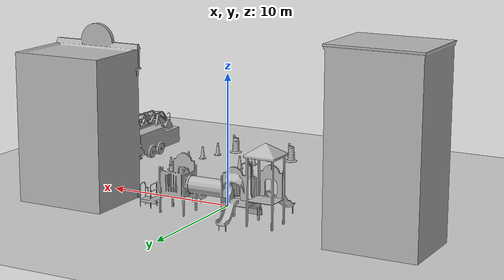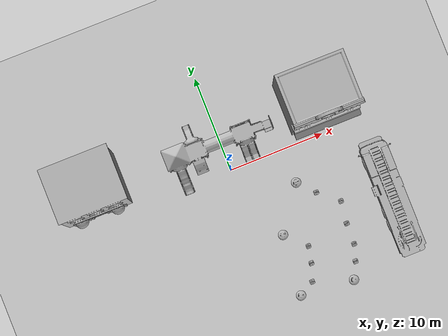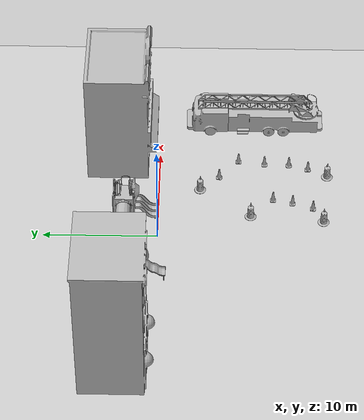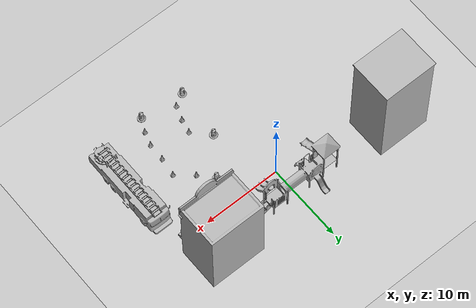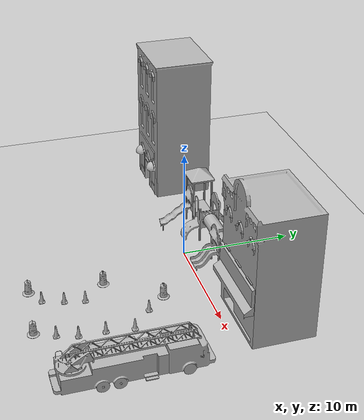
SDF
<sdf version="1.7">
 <world name="default">
  <light name="sun" type="directional">
   <pose>0 0 10 0 -0 0</pose>
   <diffuse>0.8 0.8 0.8 1</diffuse>
   <specular>0.2 0.2 0.2 1</specular>
   <attenuation>
    <range>1000</range>
    <constant>0.9</constant>
    <linear>0.01</linear>
    <quadratic>0.001</quadratic>
   </attenuation>
   <direction>-0.5 0.1 -0.9</direction>
   <spot><inner_angle>0</inner_angle><outer_angle>0</outer_angle><falloff>0</falloff></spot>
  </light>
  <model name="ground_plane">
   <static>1</static>
   <link name="link">
    <collision name="collision">
     <geometry><plane><normal>0 0 1</normal><size>100 100</size></plane></geometry>
     <surface>
      <contact><collide_bitmask>65535</collide_bitmask></contact>
      <friction><ode><mu>100</mu><mu2>50</mu2></ode></friction>
     </surface>
    </collision>
    <visual name="visual">
     <cast_shadows>0</cast_shadows>
     <geometry><plane><normal>0 0 1</normal><size>100 100</size></plane></geometry>
     <material>
      <script><uri>file://media/materials/scripts/gazebo.material</uri><name>Gazebo/Grey</name></script>
     </material>
    </visual>
   </link>
  </model>
  <gravity>0 0 -9.8</gravity>
  <magnetic_field>6e-06 2.3e-05 -4.2e-05</magnetic_field>
  <atmosphere type="adiabatic"/>
  <physics type="ode">
   <max_step_size>0.001</max_step_size>
   <real_time_factor>1</real_time_factor>
   <real_time_update_rate>1000</real_time_update_rate>
  </physics>
  <scene><ambient>0.4 0.4 0.4 1</ambient><background>0.7 0.7 0.7 1</background><shadows>1</shadows></scene>
  <audio><device>default</device></audio>
  <spherical_coordinates>
   <surface_model>EARTH_WGS84</surface_model>
   <latitude_deg>0</latitude_deg>
   <longitude_deg>0</longitude_deg>
   <elevation>0</elevation>
   <heading_deg>0</heading_deg>
  </spherical_coordinates>
  <model name="playground">
   <static>1</static>
   <link name="link">
    <collision name="collision">
     <geometry><mesh><uri>model://playground/meshes/playground.dae</uri></mesh></geometry>
    </collision>
    <visual name="visual">
     <geometry><mesh><uri>model://playground/meshes/playground.dae</uri></mesh></geometry>
    </visual>
   </link>
   <pose>-0.148504 2.5526 0 0 -0 0</pose>
  </model>
  <model name="thrift_shop">
   <static>1</static>
   <link name="link">
    <collision name="collision">
     <pose>0 0 5.69469 0 -0 0</pose>
     <geometry><box><size>7.21297 5.43165 11.3894</size></box></geometry>
    </collision>
    <visual name="visual">
     <pose>0 -0.912491 0 0 -0 0</pose>
     <geometry><mesh><uri>model://thrift_shop/meshes/thrift_shop.dae</uri></mesh></geometry>
    </visual>
   </link>
   <pose>10.7255 3.74569 0 0 -0 0</pose>
  </model>
  <model name="law_office">
   <static>1</static>
   <link name="link">
    <collision name="collision">
     <pose>0 0 6.96244 0 -0 0</pose>
     <geometry><box><size>6.84401 5.43165 13.9249</size></box></geometry>
    </collision>
    <visual name="visual">
     <geometry><mesh><uri>model://law_office/meshes/law_office.dae</uri></mesh></geometry>
    </visual>
   </link>
   <pose>-13.9252 3.29391 0 0 -0 0</pose>
  </model>
  <model name="fire_truck">
   <static>1</static>
   <link name="link">
    <collision name="collision">
     <geometry>
      <mesh><scale>0.1 0.1 0.1</scale><uri>model://fire_truck/meshes/fire_truck.obj</uri></mesh>
     </geometry>
    </collision>
    <visual name="visual">
     <geometry>
      <mesh><scale>0.1 0.1 0.1</scale><uri>model://fire_truck/meshes/fire_truck.obj</uri></mesh>
     </geometry>
    </visual>
   </link>
   <pose>14.2173 -8.21091 0 0 -0 0</pose>
  </model>
  <model name="Construction Barrel">
   <link name="link">
    <inertial>
     <pose>0 0 0.4 0 -0 0</pose>
     <mass>500</mass>
     <inertia><ixx>51.2096</ixx><iyy>51.2096</iyy><izz>25</izz><ixy>0</ixy><ixz>0</ixz><iyz>0</iyz></inertia>
    </inertial>
    <collision name="collision">
     <geometry><mesh><uri>model://construction_barrel/meshes/construction_barrel.dae</uri></mesh></geometry>
    </collision>
    <visual name="visual">
     <geometry><mesh><uri>model://construction_barrel/meshes/construction_barrel.dae</uri></mesh></geometry>
    </visual>
   </link>
   <pose>2.52265 -8.10113 1e-06 3e-06 2e-06 -2e-05</pose>
  </model>
  <model name="Construction Barrel_0">
   <link name="link">
    <inertial>
     <pose>0 0 0.4 0 -0 0</pose>
     <mass>500</mass>
     <inertia><ixx>51.2096</ixx><iyy>51.2096</iyy><izz>25</izz><ixy>0</ixy><ixz>0</ixz><iyz>0</iyz></inertia>
    </inertial>
    <collision name="collision">
     <geometry><mesh><uri>model://construction_barrel/meshes/construction_barrel.dae</uri></mesh></geometry>
    </collision>
    <visual name="visual">
     <geometry><mesh><uri>model://construction_barrel/meshes/construction_barrel.dae</uri></mesh></geometry>
    </visual>
   </link>
   <pose>5.7287 -3.62839 -0 0 0 -1.8e-05</pose>
  </model>
  <model name="Construction Cone">
   <link name="link">
    <collision name="collision">
     <geometry>
      <mesh><scale>10 10 10</scale><uri>model://construction_cone/meshes/construction_cone.dae</uri></mesh>
     </geometry>
    </collision>
    <visual name="visual">
     <geometry>
      <mesh><scale>10 10 10</scale><uri>model://construction_cone/meshes/construction_cone.dae</uri></mesh>
     </geometry>
    </visual>
    <inertial>
     <inertia><ixx>1</ixx><ixy>0</ixy><ixz>0</ixz><iyy>1</iyy><iyz>0</iyz><izz>1</izz></inertia>
     <mass>1</mass>
    </inertial>
   </link>
   <pose>4.51106 -10.1034 -0 0 -0 0</pose>
  </model>
  <model name="Construction Cone_0">
   <link name="link">
    <collision name="collision">
     <geometry>
      <mesh><scale>10 10 10</scale><uri>model://construction_cone/meshes/construction_cone.dae</uri></mesh>
     </geometry>
    </collision>
    <visual name="visual">
     <geometry>
      <mesh><scale>10 10 10</scale><uri>model://construction_cone/meshes/construction_cone.dae</uri></mesh>
     </geometry>
    </visual>
    <inertial>
     <inertia><ixx>1</ixx><ixy>0</ixy><ixz>0</ixz><iyy>1</iyy><iyz>0</iyz><izz>1</izz></inertia>
     <mass>1</mass>
    </inertial>
   </link>
   <pose>7.26887 -5.32739 0 -0 -0 -0</pose>
  </model>
  <model name="Construction Cone_1">
   <link name="link">
    <collision name="collision">
     <geometry>
      <mesh><scale>10 10 10</scale><uri>model://construction_cone/meshes/construction_cone.dae</uri></mesh>
     </geometry>
    </collision>
    <visual name="visual">
     <geometry>
      <mesh><scale>10 10 10</scale><uri>model://construction_cone/meshes/construction_cone.dae</uri></mesh>
     </geometry>
    </visual>
    <inertial>
     <inertia><ixx>1</ixx><ixy>0</ixy><ixz>0</ixz><iyy>1</iyy><iyz>0</iyz><izz>1</izz></inertia>
     <mass>1</mass>
    </inertial>
   </link>
   <pose>9.28339 -7.06379 -0 0 -0 0</pose>
  </model>
  <model name="Construction Cone_2">
   <link name="link">
    <collision name="collision">
     <geometry>
      <mesh><scale>10 10 10</scale><uri>model://construction_cone/meshes/construction_cone.dae</uri></mesh>
     </geometry>
    </collision>
    <visual name="visual">
     <geometry>
      <mesh><scale>10 10 10</scale><uri>model://construction_cone/meshes/construction_cone.dae</uri></mesh>
     </geometry>
    </visual>
    <inertial>
     <inertia><ixx>1</ixx><ixy>0</ixy><ixz>0</ixz><iyy>1</iyy><iyz>0</iyz><izz>1</izz></inertia>
     <mass>1</mass>
    </inertial>
   </link>
   <pose>8.9769 -9.39689 -0 0 -1e-06 0</pose>
  </model>
  <model name="Construction Cone_3">
   <link name="link">
    <collision name="collision">
     <geometry>
      <mesh><scale>10 10 10</scale><uri>model://construction_cone/meshes/construction_cone.dae</uri></mesh>
     </geometry>
    </collision>
    <visual name="visual">
     <geometry>
      <mesh><scale>10 10 10</scale><uri>model://construction_cone/meshes/construction_cone.dae</uri></mesh>
     </geometry>
    </visual>
    <inertial>
     <inertia><ixx>1</ixx><ixy>0</ixy><ixz>0</ixz><iyy>1</iyy><iyz>0</iyz><izz>1</izz></inertia>
     <mass>1</mass>
    </inertial>
   </link>
   <pose>4.1414 -11.8274 -4e-06 4e-06 -1e-06 0</pose>
  </model>
  <model name="Construction Cone_4">
   <link name="link">
    <collision name="collision">
     <geometry>
      <mesh><scale>10 10 10</scale><uri>model://construction_cone/meshes/construction_cone.dae</uri></mesh>
     </geometry>
    </collision>
    <visual name="visual">
     <geometry>
      <mesh><scale>10 10 10</scale><uri>model://construction_cone/meshes/construction_cone.dae</uri></mesh>
     </geometry>
    </visual>
    <inertial>
     <inertia><ixx>1</ixx><ixy>0</ixy><ixz>0</ixz><iyy>1</iyy><iyz>0</iyz><izz>1</izz></inertia>
     <mass>1</mass>
    </inertial>
   </link>
   <pose>3.52647 -13.6179 -0 0 -0 0</pose>
  </model>
  <model name="Construction Cone_5">
   <link name="link">
    <collision name="collision">
     <geometry>
      <mesh><scale>10 10 10</scale><uri>model://construction_cone/meshes/construction_cone.dae</uri></mesh>
     </geometry>
    </collision>
    <visual name="visual">
     <geometry>
      <mesh><scale>10 10 10</scale><uri>model://construction_cone/meshes/construction_cone.dae</uri></mesh>
     </geometry>
    </visual>
    <inertial>
     <inertia><ixx>1</ixx><ixy>0</ixy><ixz>0</ixz><iyy>1</iyy><iyz>0</iyz><izz>1</izz></inertia>
     <mass>1</mass>
    </inertial>
   </link>
   <pose>8.90792 -11.6017 -0 0 -0 0</pose>
  </model>
  <model name="Construction Cone_6">
   <link name="link">
    <collision name="collision">
     <geometry>
      <mesh><scale>10 10 10</scale><uri>model://construction_cone/meshes/construction_cone.dae</uri></mesh>
     </geometry>
    </collision>
    <visual name="visual">
     <geometry>
      <mesh><scale>10 10 10</scale><uri>model://construction_cone/meshes/construction_cone.dae</uri></mesh>
     </geometry>
    </visual>
    <inertial>
     <inertia><ixx>1</ixx><ixy>0</ixy><ixz>0</ixz><iyy>1</iyy><iyz>0</iyz><izz>1</izz></inertia>
     <mass>1</mass>
    </inertial>
   </link>
   <pose>8.38459 -13.3001 -0 0 -0 0</pose>
  </model>
  <model name="Construction Barrel_1">
   <link name="link">
    <inertial>
     <pose>0 0 0.4 0 -0 0</pose>
     <mass>500</mass>
     <inertia><ixx>51.2096</ixx><iyy>51.2096</iyy><izz>25</izz><ixy>0</ixy><ixz>0</ixz><iyz>0</iyz></inertia>
    </inertial>
    <collision name="collision">
     <geometry><mesh><uri>model://construction_barrel/meshes/construction_barrel.dae</uri></mesh></geometry>
    </collision>
    <visual name="visual">
     <geometry><mesh><uri>model://construction_barrel/meshes/construction_barrel.dae</uri></mesh></geometry>
    </visual>
   </link>
   <pose>1.95643 -14.4971 0 0 0 -3e-06</pose>
  </model>
  <model name="Construction Barrel_2">
   <link name="link">
    <inertial>
     <pose>0 0 0.4 0 -0 0</pose>
     <mass>500</mass>
     <inertia><ixx>51.2096</ixx><iyy>51.2096</iyy><izz>25</izz><ixy>0</ixy><ixz>0</ixz><iyz>0</iyz></inertia>
    </inertial>
    <collision name="collision">
     <geometry><mesh><uri>model://construction_barrel/meshes/construction_barrel.dae</uri></mesh></geometry>
    </collision>
    <visual name="visual">
     <geometry><mesh><uri>model://construction_barrel/meshes/construction_barrel.dae</uri></mesh></geometry>
    </visual>
   </link>
   <pose>7.54447 -15.0021 -1e-06 3e-06 -2e-06 -2e-06</pose>
  </model>
 </world>
</sdf>
